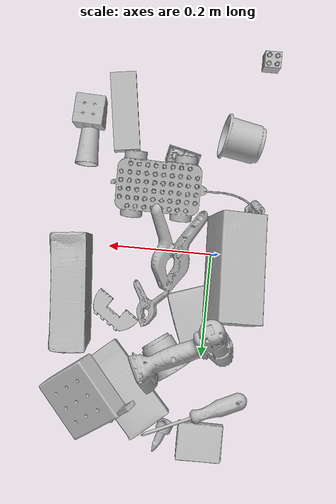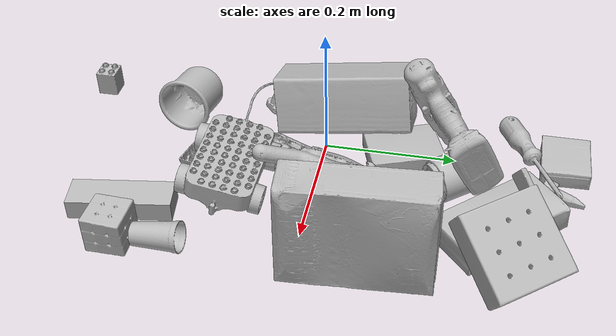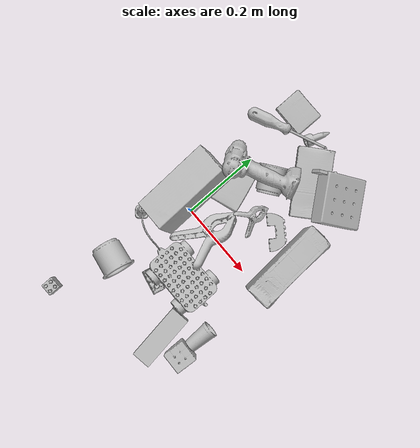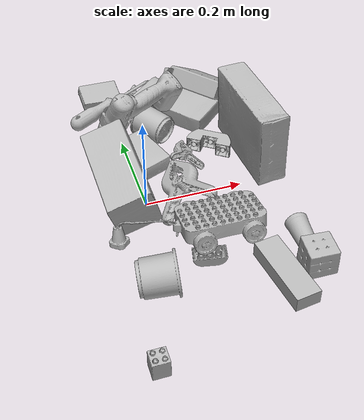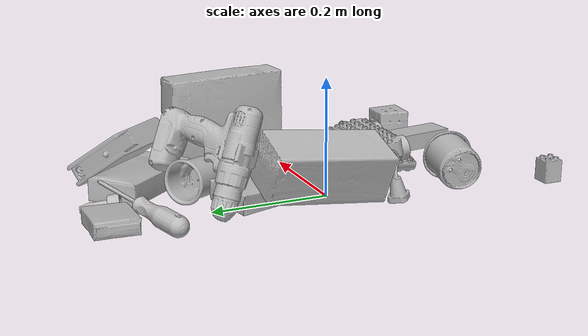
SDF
<sdf version="1.4">
  <world name="default">
    <light name="light1" type="point">
      <pose>0 0 1 0 0 0</pose>
      <diffuse>3 3 3 1</diffuse>
      <specular>3 3 3 1</specular>
    </light>
    <light name="light2" type="point">
      <pose>0 0.5 2 0 0 0</pose>
      <diffuse>1 1 1 1</diffuse>
      <specular>1 1 1 1</specular>
    </light>
    <light name="light3" type="point">
      <pose>0 0.5 2 0 0 0</pose>
      <diffuse>3 3 3 1</diffuse>
      <specular>3 3 3 1</specular>
    </light>
    <scene>
      <ambient>0.7 0.7 0.7</ambient>
    </scene>
    <model name="box21">
      <link name="link_box21">
        <collision name="default">
          <geometry>
            <mesh>
              <uri>model://cracker_box/collision_meshes/collision.obj</uri>
              <scale>1.0 1.0 1.0</scale>
            </mesh>
          </geometry>
          <surface>
            <friction>
              <ode>
                <mu>0.5</mu>
                <mu2>0.5</mu2>
              </ode>
            </friction>
          <contact>
        <ode>
            <max_vel>0</max_vel>
            <min_depth>0.0001</min_depth>
            <kp>1e8</kp>
        </ode>
    </contact></surface>
        </collision>
        <visual name="default">
          <geometry>
            <mesh>
              <uri>model://cracker_box/visual_meshes/visual.dae</uri>
              <scale>1.0 1.0 1.0</scale>
            </mesh>
          </geometry>
        </visual>
        <inertial>
          <mass>2.590176582336426</mass>
          <pose>0.0009464152390137315 0.00025434247800149024 -0.0017029535956680775 -0.0003162072774594163 -0.011106486806667554 0.0025467954652388498</pose>
          <inertia>
            <ixx>0.0065882523</ixx>
            <iyy>0.0108785</iyy>
            <izz>0.015524619</izz>
            <ixy>0</ixy>
            <ixz>0</ixz>
            <iyz>0</iyz>
          </inertia>
        </inertial>
      </link>
      <pose>0.25640860199928284 0.08921733498573303 0.08175764977931976 1.5452337600824426 0.009040087662976993 1.651018421533958</pose>
    </model>
    <model name="box22">
      <link name="link_box22">
        <collision name="default">
          <geometry>
            <mesh>
              <uri>model://gelatin_box/collision_meshes/collision.obj</uri>
              <scale>1.0 1.0 1.0</scale>
            </mesh>
          </geometry>
          <surface>
            <friction>
              <ode>
                <mu>0.5</mu>
                <mu2>0.5</mu2>
              </ode>
            </friction>
          <contact>
        <ode>
            <max_vel>0</max_vel>
            <min_depth>0.0001</min_depth>
            <kp>1e8</kp>
        </ode>
    </contact></surface>
        </collision>
        <visual name="default">
          <geometry>
            <mesh>
              <uri>model://gelatin_box/visual_meshes/visual.dae</uri>
              <scale>1.0 1.0 1.0</scale>
            </mesh>
          </geometry>
        </visual>
        <inertial>
          <mass>0.25047940015792847</mass>
          <pose>0.0004319618456065655 0.00011156871914863586 -0.0003640321083366871 -0.0010503719848663328 -0.004755819155031653 0.016440561334722496</pose>
          <inertia>
            <ixx>0.00017681804</ixx>
            <iyy>0.00012630019</iyy>
            <izz>0.0002691564</izz>
            <ixy>0</ixy>
            <ixz>0</ixz>
            <iyz>0</iyz>
          </inertia>
        </inertial>
      </link>
      <pose>-0.01001561526209116 0.36296388506889343 0.0145806223154068 -3.125866582484991 -0.025716927472730317 1.5778883594465978</pose>
    </model>
    <model name="box23">
      <link name="link_box23">
        <collision name="default">
          <geometry>
            <mesh>
              <uri>model://pudding_box/collision_meshes/collision.obj</uri>
              <scale>1.0 1.0 1.0</scale>
            </mesh>
          </geometry>
          <surface>
            <friction>
              <ode>
                <mu>0.5</mu>
                <mu2>0.5</mu2>
              </ode>
            </friction>
          <contact>
        <ode>
            <max_vel>0</max_vel>
            <min_depth>0.0001</min_depth>
            <kp>1e8</kp>
        </ode>
    </contact></surface>
        </collision>
        <visual name="default">
          <geometry>
            <mesh>
              <uri>model://pudding_box/visual_meshes/visual.dae</uri>
              <scale>1.0 1.0 1.0</scale>
            </mesh>
          </geometry>
        </visual>
        <inertial>
          <mass>0.39469316601753235</mass>
          <pose>0.0004894821904599667 0.000806788622867316 -0.0005188827635720372 0.005213100892100292 -0.006603796836808699 0.020079821441474487</pose>
          <inertia>
            <ixx>0.00044618026</ixx>
            <iyy>0.00030019323</iyy>
            <izz>0.00065890176</izz>
            <ixy>0</ixy>
            <ixz>0</ixz>
            <iyz>0</iyz>
          </inertia>
        </inertial>
      </link>
      <pose>0.017569446936249733 0.12175971269607544 0.020679675042629242 0.006190700558689398 -0.05496720817704978 0.3278173441173967</pose>
    </model>
    <model name="cup1">
      <link name="link_cup1">
        <collision name="default">
          <geometry>
            <mesh>
              <uri>model://cup_small/collision_meshes/collision.obj</uri>
              <scale>1.0 1.0 1.0</scale>
            </mesh>
          </geometry>
          <surface>
            <friction>
              <ode>
                <mu>0.5</mu>
                <mu2>0.5</mu2>
              </ode>
            </friction>
          <contact>
        <ode>
            <max_vel>0</max_vel>
            <min_depth>0.0001</min_depth>
            <kp>1e8</kp>
        </ode>
    </contact></surface>
        </collision>
        <visual name="default">
          <geometry>
            <mesh>
              <uri>model://cup_small/visual_meshes/visual.dae</uri>
              <scale>1.0 1.0 1.0</scale>
            </mesh>
          </geometry>
        </visual>
        <inertial>
          <mass>0.021035347133874893</mass>
          <pose>0.0001048244594130665 -0.0003377834218554199 -0.010742821730673313 -0.011493211249102088 -0.015280240526329824 -0.5058153233609384</pose>
          <inertia>
            <ixx>1.2385285e-05</ixx>
            <iyy>1.2449176e-05</iyy>
            <izz>5.591994e-06</izz>
            <ixy>0</ixy>
            <ixz>0</ixz>
            <iyz>0</iyz>
          </inertia>
        </inertial>
      </link>
      <pose>0.2550384998321533 -0.18720686435699463 0.01956903003156185 -1.475360900844012 0.39883228756042677 0.027984266866286012</pose>
    </model>
    <model name="cup2">
      <link name="link_cup2">
        <collision name="default">
          <geometry>
            <mesh>
              <uri>model://e_cups/collision_meshes/collision.obj</uri>
              <scale>1.0 1.0 1.0</scale>
            </mesh>
          </geometry>
          <surface>
            <friction>
              <ode>
                <mu>0.5</mu>
                <mu2>0.5</mu2>
              </ode>
            </friction>
          <contact>
        <ode>
            <max_vel>0</max_vel>
            <min_depth>0.0001</min_depth>
            <kp>1e8</kp>
        </ode>
    </contact></surface>
        </collision>
        <visual name="default">
          <geometry>
            <mesh>
              <uri>model://e_cups/visual_meshes/visual.dae</uri>
              <scale>1.0 1.0 1.0</scale>
            </mesh>
          </geometry>
        </visual>
        <inertial>
          <mass>0.053841520100831985</mass>
          <pose>0.0011355747701600194 0.0028797851409763098 -0.0038829720579087734 0.69523823542345 0.08767615215021585 -0.5235238319868403</pose>
          <inertia>
            <ixx>4.7474743e-05</ixx>
            <iyy>4.9617902e-05</iyy>
            <izz>4.5391338e-05</izz>
            <ixy>0</ixy>
            <ixz>0</ixz>
            <iyz>0</iyz>
          </inertia>
        </inertial>
      </link>
      <pose>0.07292330265045166 0.20067496597766876 0.03514106199145317 1.4682206820468202 -0.6037409853450592 -2.4528535748094593</pose>
    </model>
    <model name="box11">
      <link name="link_box11">
        <collision name="default">
          <geometry>
            <mesh>
              <uri>model://jenga/collision_meshes/collision.obj</uri>
              <scale>1.0 1.0 1.0</scale>
            </mesh>
          </geometry>
          <surface>
            <friction>
              <ode>
                <mu>0.5</mu>
                <mu2>0.5</mu2>
              </ode>
            </friction>
          <contact>
        <ode>
            <max_vel>0</max_vel>
            <min_depth>0.0001</min_depth>
            <kp>1e8</kp>
        </ode>
    </contact></surface>
        </collision>
        <visual name="default">
          <geometry>
            <mesh>
              <uri>model://jenga/visual_meshes/visual.dae</uri>
              <scale>1.0 1.0 1.0</scale>
            </mesh>
          </geometry>
        </visual>
        <inertial>
          <mass>0.26362571120262146</mass>
          <pose>-2.502855807051674e-07 -0.00010250010382151231 -4.0923401684267446e-05 0.0 -7.342155186052628e-07 0.0</pose>
          <inertia>
            <ixx>7.295163e-05</ixx>
            <iyy>0.0004943182</iyy>
            <izz>0.0005277267</izz>
            <ixy>0</ixy>
            <ixz>0</ixz>
            <iyz>0</iyz>
          </inertia>
        </inertial>
      </link>
      <pose>0.19037167727947235 -0.26111555099487305 0.014999997802078724 3.1415926457819983 -1.343733972110655e-09 -1.4270605295665335</pose>
    </model>
    <model name="box12">
      <link name="link_box12">
        <collision name="default">
          <geometry>
            <mesh>
              <uri>model://rubiks_cube/collision_meshes/collision.obj</uri>
              <scale>1.0 1.0 1.0</scale>
            </mesh>
          </geometry>
          <surface>
            <friction>
              <ode>
                <mu>0.5</mu>
                <mu2>0.5</mu2>
              </ode>
            </friction>
          <contact>
        <ode>
            <max_vel>0</max_vel>
            <min_depth>0.0001</min_depth>
            <kp>1e8</kp>
        </ode>
    </contact></surface>
        </collision>
        <visual name="default">
          <geometry>
            <mesh>
              <uri>model://rubiks_cube/visual_meshes/visual.dae</uri>
              <scale>1.0 1.0 1.0</scale>
            </mesh>
          </geometry>
        </visual>
        <inertial>
          <mass>0.2476155012845993</mass>
          <pose>2.6721041649580002e-05 5.256966323941015e-05 -7.2643156272533815e-06 -0.05467269607811095 -0.09813983501015876 -0.034455733913541106</pose>
          <inertia>
            <ixx>0.00013682418</ixx>
            <iyy>0.0001361861</iyy>
            <izz>0.00013795799</izz>
            <ixy>0</ixy>
            <ixz>0</ixz>
            <iyz>0</iyz>
          </inertia>
        </inertial>
      </link>
      <pose>0.2560476064682007 -0.2527855932712555 0.029219169169664383 -1.5884604730789467 -1.5455030201895754 -0.019514959879889993</pose>
    </model>
    <model name="box13">
      <link name="link_box13">
        <collision name="default">
          <geometry>
            <mesh>
              <uri>model://sugar_box/collision_meshes/collision.obj</uri>
              <scale>1.0 1.0 1.0</scale>
            </mesh>
          </geometry>
          <surface>
            <friction>
              <ode>
                <mu>0.5</mu>
                <mu2>0.5</mu2>
              </ode>
            </friction>
          <contact>
        <ode>
            <max_vel>0</max_vel>
            <min_depth>0.0001</min_depth>
            <kp>1e8</kp>
        </ode>
    </contact></surface>
        </collision>
        <visual name="default">
          <geometry>
            <mesh>
              <uri>model://sugar_box/visual_meshes/visual.dae</uri>
              <scale>1.0 1.0 1.0</scale>
            </mesh>
          </geometry>
        </visual>
        <inertial>
          <mass>0.6861893534660339</mass>
          <pose>0.0010343727190047503 3.849109634757042e-05 -0.0003636480250861496 -0.00040462627129080113 0.001050663522124822 0.0026153787889376494</pose>
          <inertia>
            <ixx>0.0005717311</ixx>
            <iyy>0.0018479523</iyy>
            <izz>0.0022122194</izz>
            <ixy>0</ixy>
            <ixz>0</ixz>
            <iyz>0</iyz>
          </inertia>
        </inertial>
      </link>
      <pose>0.14597868919372559 0.272633820772171 0.022365160286426544 3.138814192565176 -0.024118589730238747 2.3055579529928747</pose>
    </model>
    <model name="box14">
      <link name="link_box14">
        <collision name="default">
          <geometry>
            <mesh>
              <uri>model://wood_block/collision_meshes/collision.obj</uri>
              <scale>1.0 1.0 1.0</scale>
            </mesh>
          </geometry>
          <surface>
            <friction>
              <ode>
                <mu>0.5</mu>
                <mu2>0.5</mu2>
              </ode>
            </friction>
          <contact>
        <ode>
            <max_vel>0</max_vel>
            <min_depth>0.0001</min_depth>
            <kp>1e8</kp>
        </ode>
    </contact></surface>
        </collision>
        <visual name="default">
          <geometry>
            <mesh>
              <uri>model://wood_block/visual_meshes/visual.dae</uri>
              <scale>1.0 1.0 1.0</scale>
            </mesh>
          </geometry>
        </visual>
        <inertial>
          <mass>2.2081377506256104</mass>
          <pose>-5.813315965497168e-06 -0.000570809468626976 0.00026408585836179554 -0.052206634003801496 -0.0051926960857359 -0.00686137798931887</pose>
          <inertia>
            <ixx>0.0029548227</ixx>
            <iyy>0.009334286</iyy>
            <izz>0.0092993695</izz>
            <ixy>0</ixy>
            <ixz>0</ixz>
            <iyz>0</iyz>
          </inertia>
        </inertial>
      </link>
      <pose>-0.0431218184530735 0.02438901923596859 0.06627845019102097 1.2716688619847731 -0.12276886372034772 1.607299342924588</pose>
    </model>
    <model name="cup15">
      <link name="link_cup15">
        <collision name="default">
          <geometry>
            <mesh>
              <uri>model://g_cups/collision_meshes/collision.obj</uri>
              <scale>1.0 1.0 1.0</scale>
            </mesh>
          </geometry>
          <surface>
            <friction>
              <ode>
                <mu>0.5</mu>
                <mu2>0.5</mu2>
              </ode>
            </friction>
          <contact>
        <ode>
            <max_vel>0</max_vel>
            <min_depth>0.0001</min_depth>
            <kp>1e8</kp>
        </ode>
    </contact></surface>
        </collision>
        <visual name="default">
          <geometry>
            <mesh>
              <uri>model://g_cups/visual_meshes/visual.dae</uri>
              <scale>1.0 1.0 1.0</scale>
            </mesh>
          </geometry>
        </visual>
        <inertial>
          <mass>0.09534990042448044</mass>
          <pose>-0.000794626830611378 -4.206429366604425e-05 -0.002132937079295516 -0.21382187015428292 -0.3141046168173621 0.3112040328096479</pose>
          <inertia>
            <ixx>0.00011129469</ixx>
            <iyy>0.0001109161</iyy>
            <izz>0.00011528214</izz>
            <ixy>0</ixy>
            <ixz>0</ixz>
            <iyz>0</iyz>
          </inertia>
        </inertial>
      </link>
      <pose>-0.03806769847869873 -0.22168803215026855 0.04003845900297165 -1.3938820126790312 -0.9934453236474666 -1.8869604494728176</pose>
    </model>
    <model name="toy1">
      <link name="link_toy1">
        <collision name="default">
          <geometry>
            <mesh>
              <uri>model://a_lego_duplo/collision_meshes/collision.obj</uri>
              <scale>1.0 1.0 1.0</scale>
            </mesh>
          </geometry>
          <surface>
            <friction>
              <ode>
                <mu>0.5</mu>
                <mu2>0.5</mu2>
              </ode>
            </friction>
          <contact>
        <ode>
            <max_vel>0</max_vel>
            <min_depth>0.0001</min_depth>
            <kp>1e8</kp>
        </ode>
    </contact></surface>
        </collision>
        <visual name="default">
          <geometry>
            <mesh>
              <uri>model://a_lego_duplo/visual_meshes/visual.dae</uri>
              <scale>1.0 1.0 1.0</scale>
            </mesh>
          </geometry>
        </visual>
        <inertial>
          <mass>0.019288161769509315</mass>
          <pose>-0.00011337728938087821 0.00018517542048357427 0.00036926069878973067 -0.014116980162122142 -0.00012566491180396528 6.141847735431564e-05</pose>
          <inertia>
            <ixx>2.4728956e-06</ixx>
            <iyy>5.539828e-06</iyy>
            <izz>6.86231e-06</izz>
            <ixy>0</ixy>
            <ixz>0</ixz>
            <iyz>0</iyz>
          </inertia>
        </inertial>
      </link>
      <pose>0.07145640254020691 -0.18242299556732178 0.012452377937734127 3.1371616389543973 0.03747187165061326 2.9152186204743082</pose>
    </model>
    <model name="toy2">
      <link name="link_toy2">
        <collision name="default">
          <geometry>
            <mesh>
              <uri>model://nine_hole_peg_test/collision_meshes/collision.obj</uri>
              <scale>1.0 1.0 1.0</scale>
            </mesh>
          </geometry>
          <surface>
            <friction>
              <ode>
                <mu>0.5</mu>
                <mu2>0.5</mu2>
              </ode>
            </friction>
          <contact>
        <ode>
            <max_vel>0</max_vel>
            <min_depth>0.0001</min_depth>
            <kp>1e8</kp>
        </ode>
    </contact></surface>
        </collision>
        <visual name="default">
          <geometry>
            <mesh>
              <uri>model://nine_hole_peg_test/visual_meshes/visual.dae</uri>
              <scale>1.0 1.0 1.0</scale>
            </mesh>
          </geometry>
        </visual>
        <inertial>
          <mass>0.4416040778160095</mass>
          <pose>-0.004617387894541025 -0.009647616185247898 2.646069333422929e-05 -0.001466680632441769 0.0007194151669294288 -0.6342433000636255</pose>
          <inertia>
            <ixx>0.00069052057</ixx>
            <iyy>0.0006447319</iyy>
            <izz>0.0012099957</izz>
            <ixy>0</ixy>
            <ixz>0</ixz>
            <iyz>0</iyz>
          </inertia>
        </inertial>
      </link>
      <pose>0.20994478464126587 0.28883686661720276 0.057237714529037476 0.6013724370199448 0.002294336589459804 2.2664448208526067</pose>
    </model>
    <model name="toy3">
      <link name="link_toy3">
        <collision name="default">
          <geometry>
            <mesh>
              <uri>model://b_lego_duplo/collision_meshes/collision.obj</uri>
              <scale>1.0 1.0 1.0</scale>
            </mesh>
          </geometry>
          <surface>
            <friction>
              <ode>
                <mu>0.5</mu>
                <mu2>0.5</mu2>
              </ode>
            </friction>
          <contact>
        <ode>
            <max_vel>0</max_vel>
            <min_depth>0.0001</min_depth>
            <kp>1e8</kp>
        </ode>
    </contact></surface>
        </collision>
        <visual name="default">
          <geometry>
            <mesh>
              <uri>model://b_lego_duplo/visual_meshes/visual.dae</uri>
              <scale>1.0 1.0 1.0</scale>
            </mesh>
          </geometry>
        </visual>
        <inertial>
          <mass>0.05141952633857727</mass>
          <pose>-0.00011053046182496473 -9.15286273084348e-06 0.0019294298253953457 -0.03749504579203769 -0.026353926476799443 0.45190277296460496</pose>
          <inertia>
            <ixx>1.0523392e-05</ixx>
            <iyy>1.0594135e-05</iyy>
            <izz>9.376003e-06</izz>
            <ixy>0</ixy>
            <ixz>0</ixz>
            <iyz>0</iyz>
          </inertia>
        </inertial>
      </link>
      <pose>-0.08325289189815521 -0.3822577893733978 0.021815001964569092 -2.9333020698700223e-07 6.922500019025452e-07 1.5688046799865218</pose>
    </model>
    <model name="toy4">
      <link name="link_toy4">
        <collision name="default">
          <geometry>
            <mesh>
              <uri>model://e_lego_duplo/collision_meshes/collision.obj</uri>
              <scale>1.0 1.0 1.0</scale>
            </mesh>
          </geometry>
          <surface>
            <friction>
              <ode>
                <mu>0.5</mu>
                <mu2>0.5</mu2>
              </ode>
            </friction>
          <contact>
        <ode>
            <max_vel>0</max_vel>
            <min_depth>0.0001</min_depth>
            <kp>1e8</kp>
        </ode>
    </contact></surface>
        </collision>
        <visual name="default">
          <geometry>
            <mesh>
              <uri>model://e_lego_duplo/visual_meshes/visual.dae</uri>
              <scale>1.0 1.0 1.0</scale>
            </mesh>
          </geometry>
        </visual>
        <inertial>
          <mass>0.10851083695888519</mass>
          <pose>0.0003256036143284291 0.00023485413112211972 0.0019521439680829644 -0.022567807713092337 -6.825385155411165e-05 -0.007625153430497312</pose>
          <inertia>
            <ixx>2.2628092e-05</ixx>
            <iyy>9.28715e-05</iyy>
            <izz>9.0438196e-05</izz>
            <ixy>0</ixy>
            <ixz>0</ixz>
            <iyz>0</iyz>
          </inertia>
        </inertial>
      </link>
      <pose>0.18013323843479156 0.1291479766368866 0.016517644748091698 -1.5715255506661259 0.005854133075199115 -0.615223402763474</pose>
    </model>
    <model name="toy5">
      <link name="link_toy5">
        <collision name="default">
          <geometry>
            <mesh>
              <uri>model://e_toy_airplane/collision_meshes/collision.obj</uri>
              <scale>1.0 1.0 1.0</scale>
            </mesh>
          </geometry>
          <surface>
            <friction>
              <ode>
                <mu>0.5</mu>
                <mu2>0.5</mu2>
              </ode>
            </friction>
          <contact>
        <ode>
            <max_vel>0</max_vel>
            <min_depth>0.0001</min_depth>
            <kp>1e8</kp>
        </ode>
    </contact></surface>
        </collision>
        <visual name="default">
          <geometry>
            <mesh>
              <uri>model://e_toy_airplane/visual_meshes/visual.dae</uri>
              <scale>1.0 1.0 1.0</scale>
            </mesh>
          </geometry>
        </visual>
        <inertial>
          <mass>0.028576364740729332</mass>
          <pose>0.00011740469926735386 -2.248284363304265e-05 -0.011187203228473663 0.005518470588584354 0.009228302056362008 0.15041344019646216</pose>
          <inertia>
            <ixx>8.721834e-06</ixx>
            <iyy>8.6326145e-06</iyy>
            <izz>2.6212538e-06</izz>
            <ixy>0</ixy>
            <ixz>0</ixz>
            <iyz>0</iyz>
          </inertia>
        </inertial>
      </link>
      <pose>0.06705328077077866 0.3608865439891815 0.012416944839060307 -1.7434951221422235 0.2690015768759984 -0.3635744915240322</pose>
    </model>
    <model name="toy6">
      <link name="link_toy6">
        <collision name="default">
          <geometry>
            <mesh>
              <uri>model://g_lego_duplo/collision_meshes/collision.obj</uri>
              <scale>1.0 1.0 1.0</scale>
            </mesh>
          </geometry>
          <surface>
            <friction>
              <ode>
                <mu>0.5</mu>
                <mu2>0.5</mu2>
              </ode>
            </friction>
          <contact>
        <ode>
            <max_vel>0</max_vel>
            <min_depth>0.0001</min_depth>
            <kp>1e8</kp>
        </ode>
    </contact></surface>
        </collision>
        <visual name="default">
          <geometry>
            <mesh>
              <uri>model://g_lego_duplo/visual_meshes/visual.dae</uri>
              <scale>1.0 1.0 1.0</scale>
            </mesh>
          </geometry>
        </visual>
        <inertial>
          <mass>0.2849176824092865</mass>
          <pose>-0.050047703087329865 0.0017554622609168291 0.0038806754164397717 0.010963023424049216 0.03810828912622395 -0.09653028734865207</pose>
          <inertia>
            <ixx>0.000412849</ixx>
            <iyy>0.0012481753</iyy>
            <izz>0.0015615128</izz>
            <ixy>0</ixy>
            <ixz>0</ixz>
            <iyz>0</iyz>
          </inertia>
        </inertial>
      </link>
      <pose>0.05307389795780182 -0.11644923686981201 0.03968144580721855 0.19760430362504708 4.031198562747476e-06 3.132745539632466</pose>
    </model>
    <model name="hardware1">
      <link name="link_hardware1">
        <collision name="default">
          <geometry>
            <mesh>
              <uri>model://large_clamp/collision_meshes/collision.obj</uri>
              <scale>1.0 1.0 1.0</scale>
            </mesh>
          </geometry>
          <surface>
            <friction>
              <ode>
                <mu>0.5</mu>
                <mu2>0.5</mu2>
              </ode>
            </friction>
          <contact>
        <ode>
            <max_vel>0</max_vel>
            <min_depth>0.0001</min_depth>
            <kp>1e8</kp>
        </ode>
    </contact></surface>
        </collision>
        <visual name="default">
          <geometry>
            <mesh>
              <uri>model://large_clamp/visual_meshes/visual.dae</uri>
              <scale>1.0 1.0 1.0</scale>
            </mesh>
          </geometry>
        </visual>
        <inertial>
          <mass>0.15191641449928284</mass>
          <pose>0.006369356997311115 0.00035856704926118255 -0.00018398075189907104 -0.0021330805905738653 0.00967158570552682 0.02663313568730603</pose>
          <inertia>
            <ixx>0.00013403181</ixx>
            <iyy>0.0002545337</iyy>
            <izz>0.00036821538</izz>
            <ixy>0</ixy>
            <ixz>0</ixz>
            <iyz>0</iyz>
          </inertia>
        </inertial>
      </link>
      <pose>0.07450266927480698 -0.0035098509397357702 0.032367974519729614 -0.4982288024114396 0.13395405176361697 1.4539290168176429</pose>
    </model>
    <model name="hardware2">
      <link name="link_hardware2">
        <collision name="default">
          <geometry>
            <mesh>
              <uri>model://phillips_screwdriver/collision_meshes/collision.obj</uri>
              <scale>1.0 1.0 1.0</scale>
            </mesh>
          </geometry>
          <surface>
            <friction>
              <ode>
                <mu>0.5</mu>
                <mu2>0.5</mu2>
              </ode>
            </friction>
          <contact>
        <ode>
            <max_vel>0</max_vel>
            <min_depth>0.0001</min_depth>
            <kp>1e8</kp>
        </ode>
    </contact></surface>
        </collision>
        <visual name="default">
          <geometry>
            <mesh>
              <uri>model://phillips_screwdriver/visual_meshes/visual.dae</uri>
              <scale>1.0 1.0 1.0</scale>
            </mesh>
          </geometry>
        </visual>
        <inertial>
          <mass>0.09855502843856812</mass>
          <pose>-0.04777182266116142 0.001036230125464499 -0.00045555492397397757 -0.15717104537538515 0.005850995063257979 -0.0021567379341223374</pose>
          <inertia>
            <ixx>1.15792045e-05</ixx>
            <iyy>0.00014518296</iyy>
            <izz>0.00014530632</izz>
            <ixy>0</ixy>
            <ixz>0</ixz>
            <iyz>0</iyz>
          </inertia>
        </inertial>
      </link>
      <pose>0.002806704491376877 0.31184121966362 0.02756160870194435 1.4910692741258473 -0.1327363304106752 0.3904655362244031</pose>
    </model>
    <model name="hardware3">
      <link name="link_hardware3">
        <collision name="default">
          <geometry>
            <mesh>
              <uri>model://power_drill/collision_meshes/collision.obj</uri>
              <scale>1.0 1.0 1.0</scale>
            </mesh>
          </geometry>
          <surface>
            <friction>
              <ode>
                <mu>0.5</mu>
                <mu2>0.5</mu2>
              </ode>
            </friction>
          <contact>
        <ode>
            <max_vel>0</max_vel>
            <min_depth>0.0001</min_depth>
            <kp>1e8</kp>
        </ode>
    </contact></surface>
        </collision>
        <visual name="default">
          <geometry>
            <mesh>
              <uri>model://power_drill/visual_meshes/visual.dae</uri>
              <scale>1.0 1.0 1.0</scale>
            </mesh>
          </geometry>
        </visual>
        <inertial>
          <mass>0.8579708337783813</mass>
          <pose>-0.01478054840117693 0.01436943281441927 0.0012414173688739538 0.004609163561922946 0.004073017669368797 -0.18362705043487879</pose>
          <inertia>
            <ixx>0.0034962718</ixx>
            <iyy>0.0013756006</iyy>
            <izz>0.0046174442</izz>
            <ixy>0</ixy>
            <ixz>0</ixz>
            <iyz>0</iyz>
          </inertia>
        </inertial>
      </link>
      <pose>0.03640519455075264 0.19646817445755005 0.08185417950153351 0.05485662951254528 1.0955182492623603 2.117610751913347</pose>
    </model>
    <model name="hardware4">
      <link name="link_hardware4">
        <collision name="default">
          <geometry>
            <mesh>
              <uri>model://medium_clamp/collision_meshes/collision.obj</uri>
              <scale>1.0 1.0 1.0</scale>
            </mesh>
          </geometry>
          <surface>
            <friction>
              <ode>
                <mu>0.5</mu>
                <mu2>0.5</mu2>
              </ode>
            </friction>
          <contact>
        <ode>
            <max_vel>0</max_vel>
            <min_depth>0.0001</min_depth>
            <kp>1e8</kp>
        </ode>
    </contact></surface>
        </collision>
        <visual name="default">
          <geometry>
            <mesh>
              <uri>model://medium_clamp/visual_meshes/visual.dae</uri>
              <scale>1.0 1.0 1.0</scale>
            </mesh>
          </geometry>
        </visual>
        <inertial>
          <mass>0.019661318510770798</mass>
          <pose>0.005390993319451809 0.0003953249251935631 -0.00012221586075611413 -0.0012269159857183107 0.002584502991641296 0.038207758549707246</pose>
          <inertia>
            <ixx>5.356451e-06</ixx>
            <iyy>7.795151e-06</iyy>
            <izz>1.2006867e-05</izz>
            <ixy>0</ixy>
            <ixz>0</ixz>
            <iyz>0</iyz>
          </inertia>
        </inertial>
      </link>
      <pose>0.11351274698972702 0.10513690859079361 0.01813407987356186 0.482621562306884 0.1944789873273747 1.4635582679191073</pose>
    </model>
  <physics type="ode">
      <max_contacts>50</max_contacts>
      <ode>
        <solver>
          <type>quick</type>
          <iters>75</iters>
        </solver>
        <constraints>
          <contact_max_correcting_vel>0</contact_max_correcting_vel>
          <contact_surface_layer>0</contact_surface_layer>
        </constraints>
      </ode>
    </physics></world>
</sdf>
